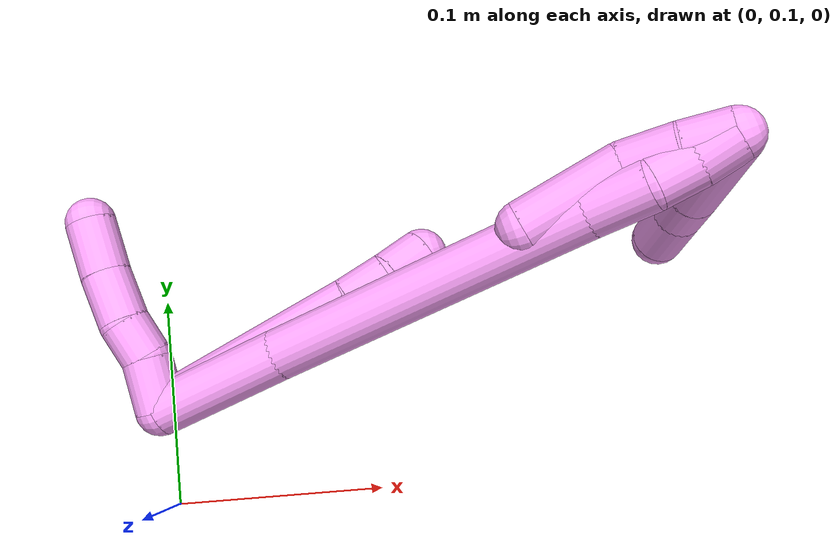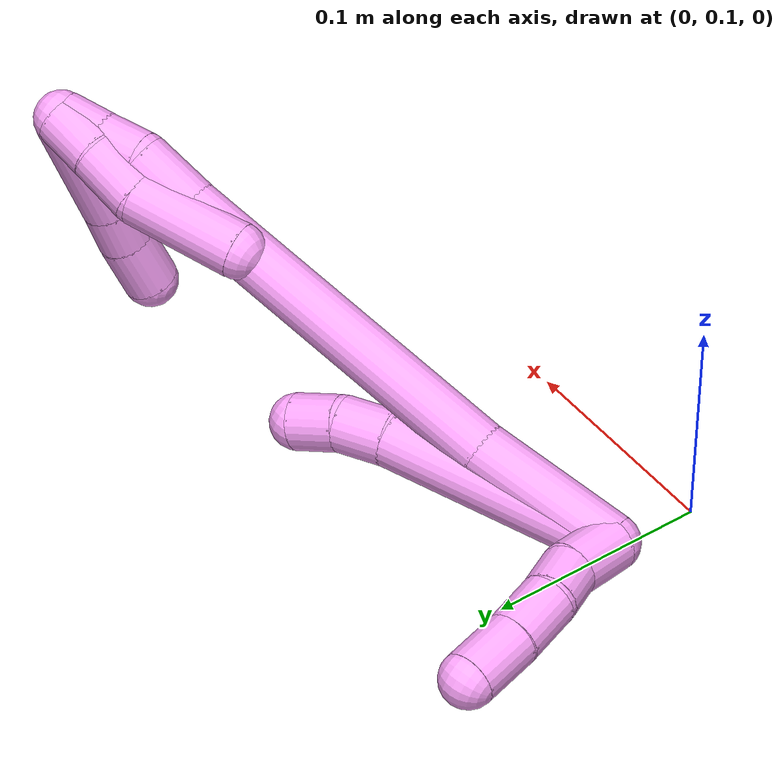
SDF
<sdf version="1.7">
 <world name="default">
  <model name="photoneo_s_sensor">
   <static>1</static>
   <pose>0 0 2 1.57079 1.57079 3.14159</pose>
   <link name="link">
    <inertial><mass>0.1</mass></inertial>
    <sensor name="sensor" type="depth">
     <update_rate>30</update_rate>
     <camera>
      <horizontal_fov>1.22</horizontal_fov>
      <image><width>1920</width><height>1200</height><format>B8G8R8</format></image>
      <clip><near>0.1</near><far>4</far></clip>
      <depth_camera><output>points</output></depth_camera>
     </camera>
     <plugin name="camera_plugin" filename="libgazebo_ros_depth_camera.so">
      <baseline>0.2</baseline>
      <alwaysOn>1</alwaysOn>
      <updateRate>0.0</updateRate>
      <cameraName>camera_ir</cameraName>
      <imageTopicName>/camera/color/image_raw</imageTopicName>
      <cameraInfoTopicName>/camera/color/camera_info</cameraInfoTopicName>
      <depthImageTopicName>/camera/depth/image_raw</depthImageTopicName>
      <depthImageCameraInfoTopicName>/camera/depth/camera_info</depthImageCameraInfoTopicName>
      <pointCloudTopicName>/camera/depth/points</pointCloudTopicName>
      <frameName>fr_optical</frameName>
      <pointCloudCutoff>0.1</pointCloudCutoff>
      <pointCloudCutoffMax>2.0</pointCloudCutoffMax>
      <distortionK1>0</distortionK1>
      <distortionK2>0</distortionK2>
      <distortionK3>0</distortionK3>
      <distortionT1>0</distortionT1>
      <distortionT2>0</distortionT2>
      <CxPrime>0</CxPrime>
      <Cx>0</Cx>
      <Cy>0</Cy>
      <focalLength>0</focalLength>
      <hackBaseline>0</hackBaseline>
     </plugin>
    </sensor>
   </link>
  </model>
  <model name="bin">
   <static>1</static>
   <link name="bottom">
    <collision name="collision-bottom">
     <pose>0 0 -0.01 0 -0 0</pose>
     <geometry><box><size>0.8 0.6 0.02</size></box></geometry>
     <surface>
      <friction><ode><mu>100</mu><mu2>100</mu2></ode></friction>
      <contact><collide_bitmask>65535</collide_bitmask></contact>
     </surface>
    </collision>
   </link>
   <link name="west_wall">
    <collision name="collision-west_wall">
     <pose>-0.41 0 0.1 0 -0 0</pose>
     <geometry><box><size>0.02 0.6 0.2</size></box></geometry>
     <surface>
      <friction><ode><mu>100</mu><mu2>100</mu2></ode></friction>
      <contact><collide_bitmask>65535</collide_bitmask></contact>
     </surface>
    </collision>
   </link>
   <link name="east_wall">
    <collision name="collision-east_wall">
     <pose>0.41 0 0.1 0 -0 0</pose>
     <geometry><box><size>0.02 0.6 0.2</size></box></geometry>
     <surface>
      <friction><ode><mu>100</mu><mu2>100</mu2></ode></friction>
      <contact><collide_bitmask>65535</collide_bitmask></contact>
     </surface>
    </collision>
   </link>
   <link name="south_wall">
    <collision name="collision-south_wall">
     <pose>0 -0.31 0.1 0 -0 0</pose>
     <geometry><box><size>0.8 0.02 0.2</size></box></geometry>
     <surface>
      <friction><ode><mu>100</mu><mu2>100</mu2></ode></friction>
      <contact><collide_bitmask>65535</collide_bitmask></contact>
     </surface>
    </collision>
   </link>
   <link name="north_wall">
    <collision name="collision-north_wall">
     <pose>0 0.31 0.1 0 -0 0</pose>
     <geometry><box><size>0.8 0.02 0.2</size></box></geometry>
     <surface>
      <friction><ode><mu>100</mu><mu2>100</mu2></ode></friction>
      <contact><collide_bitmask>65535</collide_bitmask></contact>
     </surface>
    </collision>
   </link>
  </model>
  <model name="4">
   <static>0</static>
   <link name="4">
    <collision name="collision-cylinder-e_1_2_8">
     <pose>0.004128 -0.007887 -0.052244 2.99176 0.077972 0.958531</pose>
     <geometry><cylinder><radius>0.0125</radius><length>0.105994</length></cylinder></geometry>
     <surface>
      <friction><ode><mu>1.16</mu><mu2>1.16</mu2><slip1>0</slip1><slip2>0</slip2></ode></friction>
      <contact><ode><kp>1e+06</kp><kd>1</kd><max_vel>0</max_vel><min_depth>0.001</min_depth></ode></contact>
     </surface>
    </collision>
    <visual name="visual-cylinder-e_1_2_8">
     <pose>0.004128 -0.007887 -0.052244 2.99176 0.077972 0.958531</pose>
     <geometry><cylinder><radius>0.0125</radius><length>0.105994</length></cylinder></geometry>
     <material><ambient>1 0.65098 0.996078 1</ambient></material>
    </visual>
    <collision name="collision-cylinder-e_2_8_9">
     <pose>0.010609 -0.018001 -0.115298 2.93844 0.20999 1.60411</pose>
     <geometry><cylinder><radius>0.0125</radius><length>0.02257</length></cylinder></geometry>
     <surface>
      <friction><ode><mu>1.16</mu><mu2>1.16</mu2><slip1>0</slip1><slip2>0</slip2></ode></friction>
      <contact><ode><kp>1e+06</kp><kd>1</kd><max_vel>0</max_vel><min_depth>0.001</min_depth></ode></contact>
     </surface>
    </collision>
    <visual name="visual-cylinder-e_2_8_9">
     <pose>0.010609 -0.018001 -0.115298 2.93844 0.20999 1.60411</pose>
     <geometry><cylinder><radius>0.0125</radius><length>0.02257</length></cylinder></geometry>
     <material><ambient>1 0.65098 0.996078 1</ambient></material>
    </visual>
    <collision name="collision-cylinder-e_3_9_6">
     <pose>0.017833 -0.022704 -0.135328 2.8792 0.4719 2.1377</pose>
     <geometry><cylinder><radius>0.0125</radius><length>0.021436</length></cylinder></geometry>
     <surface>
      <friction><ode><mu>1.16</mu><mu2>1.16</mu2><slip1>0</slip1><slip2>0</slip2></ode></friction>
      <contact><ode><kp>1e+06</kp><kd>1</kd><max_vel>0</max_vel><min_depth>0.001</min_depth></ode></contact>
     </surface>
    </collision>
    <visual name="visual-cylinder-e_3_9_6">
     <pose>0.017833 -0.022704 -0.135328 2.8792 0.4719 2.1377</pose>
     <geometry><cylinder><radius>0.0125</radius><length>0.021436</length></cylinder></geometry>
     <material><ambient>1 0.65098 0.996078 1</ambient></material>
    </visual>
    <collision name="collision-cylinder-e_1_2_10">
     <pose>-8e-05 -0.013222 -0.001476 1.682 -0.006043 -0.006755</pose>
     <geometry><cylinder><radius>0.0125</radius><length>0.026608</length></cylinder></geometry>
     <surface>
      <friction><ode><mu>1.16</mu><mu2>1.16</mu2><slip1>0</slip1><slip2>0</slip2></ode></friction>
      <contact><ode><kp>1e+06</kp><kd>1</kd><max_vel>0</max_vel><min_depth>0.001</min_depth></ode></contact>
     </surface>
    </collision>
    <visual name="visual-cylinder-e_1_2_10">
     <pose>-8e-05 -0.013222 -0.001476 1.682 -0.006043 -0.006755</pose>
     <geometry><cylinder><radius>0.0125</radius><length>0.026608</length></cylinder></geometry>
     <material><ambient>1 0.65098 0.996078 1</ambient></material>
    </visual>
    <collision name="collision-cylinder-e_2_10_11">
     <pose>-0.000288 -0.03637 -0.000956 1.37231 -0.012543 -0.010272</pose>
     <geometry><cylinder><radius>0.0125</radius><length>0.020254</length></cylinder></geometry>
     <surface>
      <friction><ode><mu>1.16</mu><mu2>1.16</mu2><slip1>0</slip1><slip2>0</slip2></ode></friction>
      <contact><ode><kp>1e+06</kp><kd>1</kd><max_vel>0</max_vel><min_depth>0.001</min_depth></ode></contact>
     </surface>
    </collision>
    <visual name="visual-cylinder-e_2_10_11">
     <pose>-0.000288 -0.03637 -0.000956 1.37231 -0.012543 -0.010272</pose>
     <geometry><cylinder><radius>0.0125</radius><length>0.020254</length></cylinder></geometry>
     <material><ambient>1 0.65098 0.996078 1</ambient></material>
    </visual>
    <collision name="collision-cylinder-e_3_11_12">
     <pose>0.001522 -0.058995 0.0016 1.52674 0.15122 0.144724</pose>
     <geometry><cylinder><radius>0.0125</radius><length>0.025712</length></cylinder></geometry>
     <surface>
      <friction><ode><mu>1.16</mu><mu2>1.16</mu2><slip1>0</slip1><slip2>0</slip2></ode></friction>
      <contact><ode><kp>1e+06</kp><kd>1</kd><max_vel>0</max_vel><min_depth>0.001</min_depth></ode></contact>
     </surface>
    </collision>
    <visual name="visual-cylinder-e_3_11_12">
     <pose>0.001522 -0.058995 0.0016 1.52674 0.15122 0.144724</pose>
     <geometry><cylinder><radius>0.0125</radius><length>0.025712</length></cylinder></geometry>
     <material><ambient>1 0.65098 0.996078 1</ambient></material>
    </visual>
    <collision name="collision-cylinder-e_4_12_5">
     <pose>0.00555 -0.085237 0.001697 1.60499 0.153123 0.15843</pose>
     <geometry><cylinder><radius>0.0125</radius><length>0.027426</length></cylinder></geometry>
     <surface>
      <friction><ode><mu>1.16</mu><mu2>1.16</mu2><slip1>0</slip1><slip2>0</slip2></ode></friction>
      <contact><ode><kp>1e+06</kp><kd>1</kd><max_vel>0</max_vel><min_depth>0.001</min_depth></ode></contact>
     </surface>
    </collision>
    <visual name="visual-cylinder-e_4_12_5">
     <pose>0.00555 -0.085237 0.001697 1.60499 0.153123 0.15843</pose>
     <geometry><cylinder><radius>0.0125</radius><length>0.027426</length></cylinder></geometry>
     <material><ambient>1 0.65098 0.996078 1</ambient></material>
    </visual>
    <collision name="collision-cylinder-e_1_2_13">
     <pose>-0.003157 -0.002363 -0.033281 3.07071 -0.094342 -1.85319</pose>
     <geometry><cylinder><radius>0.0125</radius><length>0.067029</length></cylinder></geometry>
     <surface>
      <friction><ode><mu>1.16</mu><mu2>1.16</mu2><slip1>0</slip1><slip2>0</slip2></ode></friction>
      <contact><ode><kp>1e+06</kp><kd>1</kd><max_vel>0</max_vel><min_depth>0.001</min_depth></ode></contact>
     </surface>
    </collision>
    <visual name="visual-cylinder-e_1_2_13">
     <pose>-0.003157 -0.002363 -0.033281 3.07071 -0.094342 -1.85319</pose>
     <geometry><cylinder><radius>0.0125</radius><length>0.067029</length></cylinder></geometry>
     <material><ambient>1 0.65098 0.996078 1</ambient></material>
    </visual>
    <collision name="collision-cylinder-e_2_13_14">
     <pose>-0.022173 -0.00933 -0.145883 3.08362 -0.197004 -2.57081</pose>
     <geometry><cylinder><radius>0.0125</radius><length>0.162041</length></cylinder></geometry>
     <surface>
      <friction><ode><mu>1.16</mu><mu2>1.16</mu2><slip1>0</slip1><slip2>0</slip2></ode></friction>
      <contact><ode><kp>1e+06</kp><kd>1</kd><max_vel>0</max_vel><min_depth>0.001</min_depth></ode></contact>
     </surface>
    </collision>
    <visual name="visual-cylinder-e_2_13_14">
     <pose>-0.022173 -0.00933 -0.145883 3.08362 -0.197004 -2.57081</pose>
     <geometry><cylinder><radius>0.0125</radius><length>0.162041</length></cylinder></geometry>
     <material><ambient>1 0.65098 0.996078 1</ambient></material>
    </visual>
    <collision name="collision-cylinder-e_3_14_15">
     <pose>-0.041843 -0.014436 -0.239781 3.10713 -0.255624 -2.87502</pose>
     <geometry><cylinder><radius>0.0125</radius><length>0.030154</length></cylinder></geometry>
     <surface>
      <friction><ode><mu>1.16</mu><mu2>1.16</mu2><slip1>0</slip1><slip2>0</slip2></ode></friction>
      <contact><ode><kp>1e+06</kp><kd>1</kd><max_vel>0</max_vel><min_depth>0.001</min_depth></ode></contact>
     </surface>
    </collision>
    <visual name="visual-cylinder-e_3_14_15">
     <pose>-0.041843 -0.014436 -0.239781 3.10713 -0.255624 -2.87502</pose>
     <geometry><cylinder><radius>0.0125</radius><length>0.030154</length></cylinder></geometry>
     <material><ambient>1 0.65098 0.996078 1</ambient></material>
    </visual>
    <collision name="collision-cylinder-e_4_15_16">
     <pose>-0.04488 -0.016095 -0.264626 3.02939 0.074916 1.1769</pose>
     <geometry><cylinder><radius>0.0125</radius><length>0.020721</length></cylinder></geometry>
     <surface>
      <friction><ode><mu>1.16</mu><mu2>1.16</mu2><slip1>0</slip1><slip2>0</slip2></ode></friction>
      <contact><ode><kp>1e+06</kp><kd>1</kd><max_vel>0</max_vel><min_depth>0.001</min_depth></ode></contact>
     </surface>
    </collision>
    <visual name="visual-cylinder-e_4_15_16">
     <pose>-0.04488 -0.016095 -0.264626 3.02939 0.074916 1.1769</pose>
     <geometry><cylinder><radius>0.0125</radius><length>0.020721</length></cylinder></geometry>
     <material><ambient>1 0.65098 0.996078 1</ambient></material>
    </visual>
    <collision name="collision-cylinder-e_5_16_1">
     <pose>-0.044632 -0.01927 -0.284701 2.93867 -0.052594 -0.50564</pose>
     <geometry><cylinder><radius>0.0125</radius><length>0.020055</length></cylinder></geometry>
     <surface>
      <friction><ode><mu>1.16</mu><mu2>1.16</mu2><slip1>0</slip1><slip2>0</slip2></ode></friction>
      <contact><ode><kp>1e+06</kp><kd>1</kd><max_vel>0</max_vel><min_depth>0.001</min_depth></ode></contact>
     </surface>
    </collision>
    <visual name="visual-cylinder-e_5_16_1">
     <pose>-0.044632 -0.01927 -0.284701 2.93867 -0.052594 -0.50564</pose>
     <geometry><cylinder><radius>0.0125</radius><length>0.020055</length></cylinder></geometry>
     <material><ambient>1 0.65098 0.996078 1</ambient></material>
    </visual>
    <collision name="collision-cylinder-e_1_1_17">
     <pose>-0.043729 -0.022735 -0.282929 0.124307 0.121893 0.007595</pose>
     <geometry><cylinder><radius>0.0125</radius><length>0.023515</length></cylinder></geometry>
     <surface>
      <friction><ode><mu>1.16</mu><mu2>1.16</mu2><slip1>0</slip1><slip2>0</slip2></ode></friction>
      <contact><ode><kp>1e+06</kp><kd>1</kd><max_vel>0</max_vel><min_depth>0.001</min_depth></ode></contact>
     </surface>
    </collision>
    <visual name="visual-cylinder-e_1_1_17">
     <pose>-0.043729 -0.022735 -0.282929 0.124307 0.121893 0.007595</pose>
     <geometry><cylinder><radius>0.0125</radius><length>0.023515</length></cylinder></geometry>
     <material><ambient>1 0.65098 0.996078 1</ambient></material>
    </visual>
    <collision name="collision-cylinder-e_2_17_18">
     <pose>-0.039482 -0.024995 -0.258621 0.063756 0.217453 0.006962</pose>
     <geometry><cylinder><radius>0.0125</radius><length>0.026123</length></cylinder></geometry>
     <surface>
      <friction><ode><mu>1.16</mu><mu2>1.16</mu2><slip1>0</slip1><slip2>0</slip2></ode></friction>
      <contact><ode><kp>1e+06</kp><kd>1</kd><max_vel>0</max_vel><min_depth>0.001</min_depth></ode></contact>
     </surface>
    </collision>
    <visual name="visual-cylinder-e_2_17_18">
     <pose>-0.039482 -0.024995 -0.258621 0.063756 0.217453 0.006962</pose>
     <geometry><cylinder><radius>0.0125</radius><length>0.026123</length></cylinder></geometry>
     <material><ambient>1 0.65098 0.996078 1</ambient></material>
    </visual>
    <collision name="collision-cylinder-e_3_18_4">
     <pose>-0.036456 -0.021874 -0.221022 -0.156849 0.008245 -0.000648</pose>
     <geometry><cylinder><radius>0.0125</radius><length>0.050362</length></cylinder></geometry>
     <surface>
      <friction><ode><mu>1.16</mu><mu2>1.16</mu2><slip1>0</slip1><slip2>0</slip2></ode></friction>
      <contact><ode><kp>1e+06</kp><kd>1</kd><max_vel>0</max_vel><min_depth>0.001</min_depth></ode></contact>
     </surface>
    </collision>
    <visual name="visual-cylinder-e_3_18_4">
     <pose>-0.036456 -0.021874 -0.221022 -0.156849 0.008245 -0.000648</pose>
     <geometry><cylinder><radius>0.0125</radius><length>0.050362</length></cylinder></geometry>
     <material><ambient>1 0.65098 0.996078 1</ambient></material>
    </visual>
    <collision name="collision-cylinder-e_1_1_19">
     <pose>-0.021895 -0.012902 -0.284152 -0.680578 1.05058 -0.404813</pose>
     <geometry><cylinder><radius>0.0125</radius><length>0.053621</length></cylinder></geometry>
     <surface>
      <friction><ode><mu>1.16</mu><mu2>1.16</mu2><slip1>0</slip1><slip2>0</slip2></ode></friction>
      <contact><ode><kp>1e+06</kp><kd>1</kd><max_vel>0</max_vel><min_depth>0.001</min_depth></ode></contact>
     </surface>
    </collision>
    <visual name="visual-cylinder-e_1_1_19">
     <pose>-0.021895 -0.012902 -0.284152 -0.680578 1.05058 -0.404813</pose>
     <geometry><cylinder><radius>0.0125</radius><length>0.053621</length></cylinder></geometry>
     <material><ambient>1 0.65098 0.996078 1</ambient></material>
    </visual>
    <collision name="collision-cylinder-e_2_19_20">
     <pose>0.010294 -0.001594 -0.269978 -0.653627 1.07672 -0.399467</pose>
     <geometry><cylinder><radius>0.0125</radius><length>0.020274</length></cylinder></geometry>
     <surface>
      <friction><ode><mu>1.16</mu><mu2>1.16</mu2><slip1>0</slip1><slip2>0</slip2></ode></friction>
      <contact><ode><kp>1e+06</kp><kd>1</kd><max_vel>0</max_vel><min_depth>0.001</min_depth></ode></contact>
     </surface>
    </collision>
    <visual name="visual-cylinder-e_2_19_20">
     <pose>0.010294 -0.001594 -0.269978 -0.653627 1.07672 -0.399467</pose>
     <geometry><cylinder><radius>0.0125</radius><length>0.020274</length></cylinder></geometry>
     <material><ambient>1 0.65098 0.996078 1</ambient></material>
    </visual>
    <collision name="collision-cylinder-e_3_20_3">
     <pose>0.030119 0.005595 -0.260387 -0.63628 0.98841 -0.351228</pose>
     <geometry><cylinder><radius>0.0125</radius><length>0.026105</length></cylinder></geometry>
     <surface>
      <friction><ode><mu>1.16</mu><mu2>1.16</mu2><slip1>0</slip1><slip2>0</slip2></ode></friction>
      <contact><ode><kp>1e+06</kp><kd>1</kd><max_vel>0</max_vel><min_depth>0.001</min_depth></ode></contact>
     </surface>
    </collision>
    <visual name="visual-cylinder-e_3_20_3">
     <pose>0.030119 0.005595 -0.260387 -0.63628 0.98841 -0.351228</pose>
     <geometry><cylinder><radius>0.0125</radius><length>0.026105</length></cylinder></geometry>
     <material><ambient>1 0.65098 0.996078 1</ambient></material>
    </visual>
    <collision name="collision-sphere-3">
     <pose>0.04102 0.009861 -0.254613 0 -0 0</pose>
     <geometry><sphere><radius>0.0125</radius></sphere></geometry>
     <surface>
      <friction><ode><mu>1.16</mu><mu2>1.16</mu2><slip1>0</slip1><slip2>0</slip2></ode></friction>
      <contact><ode><kp>1e+06</kp><kd>1</kd><max_vel>0</max_vel><min_depth>0.001</min_depth></ode></contact>
     </surface>
    </collision>
    <visual name="visual-sphere-3">
     <pose>0.04102 0.009861 -0.254613 0 -0 0</pose>
     <geometry><sphere><radius>0.0125</radius></sphere></geometry>
     <material><ambient>1 0.65098 0.996078 1</ambient></material>
    </visual>
    <collision name="collision-sphere-20">
     <pose>0.019218 0.00133 -0.266161 0 -0 0</pose>
     <geometry><sphere><radius>0.0125</radius></sphere></geometry>
     <surface>
      <friction><ode><mu>1.16</mu><mu2>1.16</mu2><slip1>0</slip1><slip2>0</slip2></ode></friction>
      <contact><ode><kp>1e+06</kp><kd>1</kd><max_vel>0</max_vel><min_depth>0.001</min_depth></ode></contact>
     </surface>
    </collision>
    <visual name="visual-sphere-20">
     <pose>0.019218 0.00133 -0.266161 0 -0 0</pose>
     <geometry><sphere><radius>0.0125</radius></sphere></geometry>
     <material><ambient>1 0.65098 0.996078 1</ambient></material>
    </visual>
    <collision name="collision-sphere-19">
     <pose>0.001369 -0.004517 -0.273794 0 -0 0</pose>
     <geometry><sphere><radius>0.0125</radius></sphere></geometry>
     <surface>
      <friction><ode><mu>1.16</mu><mu2>1.16</mu2><slip1>0</slip1><slip2>0</slip2></ode></friction>
      <contact><ode><kp>1e+06</kp><kd>1</kd><max_vel>0</max_vel><min_depth>0.001</min_depth></ode></contact>
     </surface>
    </collision>
    <visual name="visual-sphere-19">
     <pose>0.001369 -0.004517 -0.273794 0 -0 0</pose>
     <geometry><sphere><radius>0.0125</radius></sphere></geometry>
     <material><ambient>1 0.65098 0.996078 1</ambient></material>
    </visual>
    <collision name="collision-sphere-11">
     <pose>-0.000415 -0.046298 0.001041 0 -0 0</pose>
     <geometry><sphere><radius>0.0125</radius></sphere></geometry>
     <surface>
      <friction><ode><mu>1.16</mu><mu2>1.16</mu2><slip1>0</slip1><slip2>0</slip2></ode></friction>
      <contact><ode><kp>1e+06</kp><kd>1</kd><max_vel>0</max_vel><min_depth>0.001</min_depth></ode></contact>
     </surface>
    </collision>
    <visual name="visual-sphere-11">
     <pose>-0.000415 -0.046298 0.001041 0 -0 0</pose>
     <geometry><sphere><radius>0.0125</radius></sphere></geometry>
     <material><ambient>1 0.65098 0.996078 1</ambient></material>
    </visual>
    <collision name="collision-sphere-10">
     <pose>-0.000161 -0.026443 -0.002953 0 -0 0</pose>
     <geometry><sphere><radius>0.0125</radius></sphere></geometry>
     <surface>
      <friction><ode><mu>1.16</mu><mu2>1.16</mu2><slip1>0</slip1><slip2>0</slip2></ode></friction>
      <contact><ode><kp>1e+06</kp><kd>1</kd><max_vel>0</max_vel><min_depth>0.001</min_depth></ode></contact>
     </surface>
    </collision>
    <visual name="visual-sphere-10">
     <pose>-0.000161 -0.026443 -0.002953 0 -0 0</pose>
     <geometry><sphere><radius>0.0125</radius></sphere></geometry>
     <material><ambient>1 0.65098 0.996078 1</ambient></material>
    </visual>
    <collision name="collision-sphere-6">
     <pose>0.022705 -0.025181 -0.144548 0 -0 0</pose>
     <geometry><sphere><radius>0.0125</radius></sphere></geometry>
     <surface>
      <friction><ode><mu>1.16</mu><mu2>1.16</mu2><slip1>0</slip1><slip2>0</slip2></ode></friction>
      <contact><ode><kp>1e+06</kp><kd>1</kd><max_vel>0</max_vel><min_depth>0.001</min_depth></ode></contact>
     </surface>
    </collision>
    <visual name="visual-sphere-6">
     <pose>0.022705 -0.025181 -0.144548 0 -0 0</pose>
     <geometry><sphere><radius>0.0125</radius></sphere></geometry>
     <material><ambient>1 0.65098 0.996078 1</ambient></material>
    </visual>
    <collision name="collision-sphere-9">
     <pose>0.012961 -0.020228 -0.126108 0 -0 0</pose>
     <geometry><sphere><radius>0.0125</radius></sphere></geometry>
     <surface>
      <friction><ode><mu>1.16</mu><mu2>1.16</mu2><slip1>0</slip1><slip2>0</slip2></ode></friction>
      <contact><ode><kp>1e+06</kp><kd>1</kd><max_vel>0</max_vel><min_depth>0.001</min_depth></ode></contact>
     </surface>
    </collision>
    <visual name="visual-sphere-9">
     <pose>0.012961 -0.020228 -0.126108 0 -0 0</pose>
     <geometry><sphere><radius>0.0125</radius></sphere></geometry>
     <material><ambient>1 0.65098 0.996078 1</ambient></material>
    </visual>
    <collision name="collision-sphere-2">
     <geometry><sphere><radius>0.0125</radius></sphere></geometry>
     <surface>
      <friction><ode><mu>1.16</mu><mu2>1.16</mu2><slip1>0</slip1><slip2>0</slip2></ode></friction>
      <contact><ode><kp>1e+06</kp><kd>1</kd><max_vel>0</max_vel><min_depth>0.001</min_depth></ode></contact>
     </surface>
    </collision>
    <visual name="visual-sphere-2">
     <geometry><sphere><radius>0.0125</radius></sphere></geometry>
     <material><ambient>1 0.65098 0.996078 1</ambient></material>
    </visual>
    <collision name="collision-sphere-8">
     <pose>0.008256 -0.015774 -0.104488 0 -0 0</pose>
     <geometry><sphere><radius>0.0125</radius></sphere></geometry>
     <surface>
      <friction><ode><mu>1.16</mu><mu2>1.16</mu2><slip1>0</slip1><slip2>0</slip2></ode></friction>
      <contact><ode><kp>1e+06</kp><kd>1</kd><max_vel>0</max_vel><min_depth>0.001</min_depth></ode></contact>
     </surface>
    </collision>
    <visual name="visual-sphere-8">
     <pose>0.008256 -0.015774 -0.104488 0 -0 0</pose>
     <geometry><sphere><radius>0.0125</radius></sphere></geometry>
     <material><ambient>1 0.65098 0.996078 1</ambient></material>
    </visual>
    <collision name="collision-sphere-12">
     <pose>0.003459 -0.071692 0.00216 0 -0 0</pose>
     <geometry><sphere><radius>0.0125</radius></sphere></geometry>
     <surface>
      <friction><ode><mu>1.16</mu><mu2>1.16</mu2><slip1>0</slip1><slip2>0</slip2></ode></friction>
      <contact><ode><kp>1e+06</kp><kd>1</kd><max_vel>0</max_vel><min_depth>0.001</min_depth></ode></contact>
     </surface>
    </collision>
    <visual name="visual-sphere-12">
     <pose>0.003459 -0.071692 0.00216 0 -0 0</pose>
     <geometry><sphere><radius>0.0125</radius></sphere></geometry>
     <material><ambient>1 0.65098 0.996078 1</ambient></material>
    </visual>
    <collision name="collision-sphere-5">
     <pose>0.007642 -0.098781 0.001233 0 -0 0</pose>
     <geometry><sphere><radius>0.0125</radius></sphere></geometry>
     <surface>
      <friction><ode><mu>1.16</mu><mu2>1.16</mu2><slip1>0</slip1><slip2>0</slip2></ode></friction>
      <contact><ode><kp>1e+06</kp><kd>1</kd><max_vel>0</max_vel><min_depth>0.001</min_depth></ode></contact>
     </surface>
    </collision>
    <visual name="visual-sphere-5">
     <pose>0.007642 -0.098781 0.001233 0 -0 0</pose>
     <geometry><sphere><radius>0.0125</radius></sphere></geometry>
     <material><ambient>1 0.65098 0.996078 1</ambient></material>
    </visual>
    <collision name="collision-sphere-13">
     <pose>-0.006314 -0.004726 -0.066563 0 -0 0</pose>
     <geometry><sphere><radius>0.0125</radius></sphere></geometry>
     <surface>
      <friction><ode><mu>1.16</mu><mu2>1.16</mu2><slip1>0</slip1><slip2>0</slip2></ode></friction>
      <contact><ode><kp>1e+06</kp><kd>1</kd><max_vel>0</max_vel><min_depth>0.001</min_depth></ode></contact>
     </surface>
    </collision>
    <visual name="visual-sphere-13">
     <pose>-0.006314 -0.004726 -0.066563 0 -0 0</pose>
     <geometry><sphere><radius>0.0125</radius></sphere></geometry>
     <material><ambient>1 0.65098 0.996078 1</ambient></material>
    </visual>
    <collision name="collision-sphere-14">
     <pose>-0.038031 -0.013933 -0.225203 0 -0 0</pose>
     <geometry><sphere><radius>0.0125</radius></sphere></geometry>
     <surface>
      <friction><ode><mu>1.16</mu><mu2>1.16</mu2><slip1>0</slip1><slip2>0</slip2></ode></friction>
      <contact><ode><kp>1e+06</kp><kd>1</kd><max_vel>0</max_vel><min_depth>0.001</min_depth></ode></contact>
     </surface>
    </collision>
    <visual name="visual-sphere-14">
     <pose>-0.038031 -0.013933 -0.225203 0 -0 0</pose>
     <geometry><sphere><radius>0.0125</radius></sphere></geometry>
     <material><ambient>1 0.65098 0.996078 1</ambient></material>
    </visual>
    <collision name="collision-sphere-15">
     <pose>-0.045655 -0.014938 -0.254359 0 -0 0</pose>
     <geometry><sphere><radius>0.0125</radius></sphere></geometry>
     <surface>
      <friction><ode><mu>1.16</mu><mu2>1.16</mu2><slip1>0</slip1><slip2>0</slip2></ode></friction>
      <contact><ode><kp>1e+06</kp><kd>1</kd><max_vel>0</max_vel><min_depth>0.001</min_depth></ode></contact>
     </surface>
    </collision>
    <visual name="visual-sphere-15">
     <pose>-0.045655 -0.014938 -0.254359 0 -0 0</pose>
     <geometry><sphere><radius>0.0125</radius></sphere></geometry>
     <material><ambient>1 0.65098 0.996078 1</ambient></material>
    </visual>
    <collision name="collision-sphere-16">
     <pose>-0.044104 -0.017252 -0.274893 0 -0 0</pose>
     <geometry><sphere><radius>0.0125</radius></sphere></geometry>
     <surface>
      <friction><ode><mu>1.16</mu><mu2>1.16</mu2><slip1>0</slip1><slip2>0</slip2></ode></friction>
      <contact><ode><kp>1e+06</kp><kd>1</kd><max_vel>0</max_vel><min_depth>0.001</min_depth></ode></contact>
     </surface>
    </collision>
    <visual name="visual-sphere-16">
     <pose>-0.044104 -0.017252 -0.274893 0 -0 0</pose>
     <geometry><sphere><radius>0.0125</radius></sphere></geometry>
     <material><ambient>1 0.65098 0.996078 1</ambient></material>
    </visual>
    <collision name="collision-sphere-1">
     <pose>-0.045159 -0.021288 -0.294509 0 -0 0</pose>
     <geometry><sphere><radius>0.0125</radius></sphere></geometry>
     <surface>
      <friction><ode><mu>1.16</mu><mu2>1.16</mu2><slip1>0</slip1><slip2>0</slip2></ode></friction>
      <contact><ode><kp>1e+06</kp><kd>1</kd><max_vel>0</max_vel><min_depth>0.001</min_depth></ode></contact>
     </surface>
    </collision>
    <visual name="visual-sphere-1">
     <pose>-0.045159 -0.021288 -0.294509 0 -0 0</pose>
     <geometry><sphere><radius>0.0125</radius></sphere></geometry>
     <material><ambient>1 0.65098 0.996078 1</ambient></material>
    </visual>
    <collision name="collision-sphere-18">
     <pose>-0.036664 -0.025807 -0.245893 0 -0 0</pose>
     <geometry><sphere><radius>0.0125</radius></sphere></geometry>
     <surface>
      <friction><ode><mu>1.16</mu><mu2>1.16</mu2><slip1>0</slip1><slip2>0</slip2></ode></friction>
      <contact><ode><kp>1e+06</kp><kd>1</kd><max_vel>0</max_vel><min_depth>0.001</min_depth></ode></contact>
     </surface>
    </collision>
    <visual name="visual-sphere-18">
     <pose>-0.036664 -0.025807 -0.245893 0 -0 0</pose>
     <geometry><sphere><radius>0.0125</radius></sphere></geometry>
     <material><ambient>1 0.65098 0.996078 1</ambient></material>
    </visual>
    <collision name="collision-sphere-17">
     <pose>-0.042299 -0.024182 -0.271349 0 -0 0</pose>
     <geometry><sphere><radius>0.0125</radius></sphere></geometry>
     <surface>
      <friction><ode><mu>1.16</mu><mu2>1.16</mu2><slip1>0</slip1><slip2>0</slip2></ode></friction>
      <contact><ode><kp>1e+06</kp><kd>1</kd><max_vel>0</max_vel><min_depth>0.001</min_depth></ode></contact>
     </surface>
    </collision>
    <visual name="visual-sphere-17">
     <pose>-0.042299 -0.024182 -0.271349 0 -0 0</pose>
     <geometry><sphere><radius>0.0125</radius></sphere></geometry>
     <material><ambient>1 0.65098 0.996078 1</ambient></material>
    </visual>
    <collision name="collision-sphere-4">
     <pose>-0.036248 -0.017941 -0.196151 0 -0 0</pose>
     <geometry><sphere><radius>0.0125</radius></sphere></geometry>
     <surface>
      <friction><ode><mu>1.16</mu><mu2>1.16</mu2><slip1>0</slip1><slip2>0</slip2></ode></friction>
      <contact><ode><kp>1e+06</kp><kd>1</kd><max_vel>0</max_vel><min_depth>0.001</min_depth></ode></contact>
     </surface>
    </collision>
    <visual name="visual-sphere-4">
     <pose>-0.036248 -0.017941 -0.196151 0 -0 0</pose>
     <geometry><sphere><radius>0.0125</radius></sphere></geometry>
     <material><ambient>1 0.65098 0.996078 1</ambient></material>
    </visual>
    <inertial>
     <pose>-0.012965 -0.016486 -0.143137 0 -0 0</pose>
     <mass>0.75</mass>
     <inertia>
      <ixx>-0.000341</ixx>
      <ixy>0</ixy>
      <ixz>0</ixz>
      <iyy>0.000151</iyy>
      <iyz>0</iyz>
      <izz>6.4e-05</izz>
     </inertia>
    </inertial>
   </link>
   <pose>-0.004787 0.146568 0.012522 -2.69268 1.39088 0.735234</pose>
  </model>
 </world>
</sdf>
